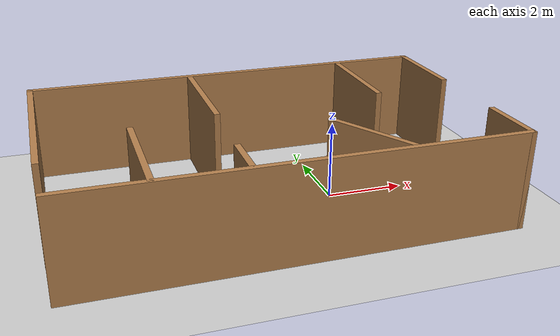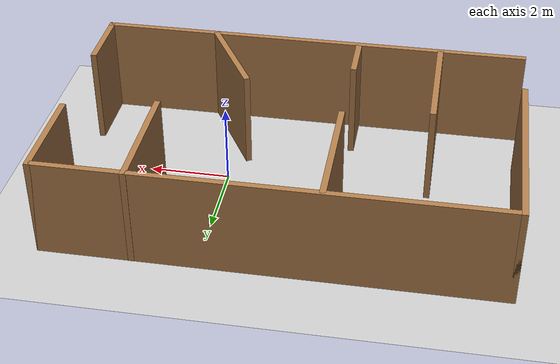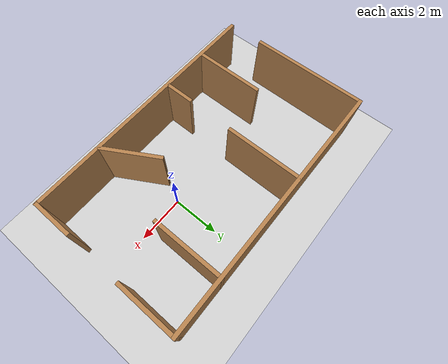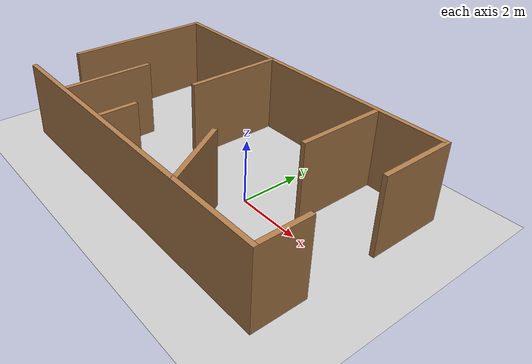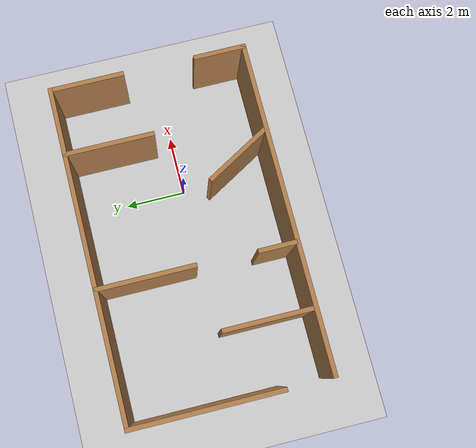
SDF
<?xml version='1.0'?>
<sdf version='1.7'>
  <world name='maze_world'>

    <!-- Sun -->
    <include>
      <uri>model://sun</uri>
    </include>

    <!-- Ground plane -->
    <include>
      <uri>model://ground_plane</uri>
    </include>

    <!-- Embedded maze model (all walls) -->
    <model name='maze_walls_model'>
      <pose>-1.72634 0.281381 0 0 0 0</pose>
      <static>1</static>

      <link name='Wall_0'>
        <pose>0.01344 -3.21138 0 0 0 0</pose>
        <collision name='Wall_0_Collision'>
          <pose>0 0 1.25 0 0 0</pose>
          <geometry><box><size>11 0.15 2.5</size></box></geometry>
        </collision>
        <visual name='Wall_0_Visual'>
          <pose>0 0 1.25 0 0 0</pose>
          <geometry><box><size>11 0.15 2.5</size></box></geometry>
          <material>
            <script>
              <uri>file://media/materials/scripts/gazebo.material</uri>
              <name>Gazebo/Wood</name>
            </script>
            <ambient>1 1 1 1</ambient>
          </material>
        </visual>
      </link>

      <link name='Wall_1'>
        <pose>5.43844 -2.41138 0 0 0 1.5708</pose>
        <collision name='Wall_1_Collision'>
          <pose>0 0 1.25 0 0 0</pose>
          <geometry><box><size>1.75 0.15 2.5</size></box></geometry>
        </collision>
        <visual name='Wall_1_Visual'>
          <pose>0 0 1.25 0 0 0</pose>
          <geometry><box><size>1.75 0.15 2.5</size></box></geometry>
          <material>
            <script>
              <uri>file://media/materials/scripts/gazebo.material</uri>
              <name>Gazebo/Wood</name>
            </script>
            <ambient>1 1 1 1</ambient>
          </material>
        </visual>
      </link>

      <link name='Wall_10'>
        <pose>-5.46182 0.781711 0 0 0 1.5708</pose>
        <collision name='Wall_10_Collision'>
          <pose>0 0 1.25 0 0 0</pose>
          <geometry><box><size>5 0.15 2.5</size></box></geometry>
        </collision>
        <visual name='Wall_10_Visual'>
          <pose>0 0 1.25 0 0 0</pose>
          <geometry><box><size>5 0.15 2.5</size></box></geometry>
          <material>
            <script>
              <uri>file://media/materials/scripts/gazebo.material</uri>
              <name>Gazebo/Wood</name>
            </script>
            <ambient>1 1 1 1</ambient>
          </material>
        </visual>
      </link>

      <link name='Wall_11'>
        <pose>0 3.20671 0 0 0 0</pose>
        <collision name='Wall_11_Collision'>
          <pose>0 0 1.25 0 0 0</pose>
          <geometry><box><size>11.0736 0.15 2.5</size></box></geometry>
        </collision>
        <visual name='Wall_11_Visual'>
          <pose>0 0 1.25 0 0 0</pose>
          <geometry><box><size>11.0736 0.15 2.5</size></box></geometry>
          <material>
            <script>
              <uri>file://media/materials/scripts/gazebo.material</uri>
              <name>Gazebo/Wood</name>
            </script>
            <ambient>1 1 1 1</ambient>
          </material>
        </visual>
      </link>

      <link name='Wall_12'>
        <pose>5.46182 2.03171 0 0 0 -1.5708</pose>
        <collision name='Wall_12_Collision'>
          <pose>0 0 1.25 0 0 0</pose>
          <geometry><box><size>2.5 0.15 2.5</size></box></geometry>
        </collision>
        <visual name='Wall_12_Visual'>
          <pose>0 0 1.25 0 0 0</pose>
          <geometry><box><size>2.5 0.15 2.5</size></box></geometry>
          <material>
            <script>
              <uri>file://media/materials/scripts/gazebo.material</uri>
              <name>Gazebo/Wood</name>
            </script>
            <ambient>1 1 1 1</ambient>
          </material>
        </visual>
      </link>

      <link name='Wall_14'>
        <pose>-1.17353 1.62092 0 0 0 -1.5708</pose>
        <collision name='Wall_14_Collision'>
          <pose>0 0 1.25 0 0 0</pose>
          <geometry><box><size>3.25 0.15 2.5</size></box></geometry>
        </collision>
        <visual name='Wall_14_Visual'>
          <pose>0 0 1.25 0 0 0</pose>
          <geometry><box><size>3.25 0.15 2.5</size></box></geometry>
          <material>
            <script>
              <uri>file://media/materials/scripts/gazebo.material</uri>
              <name>Gazebo/Wood</name>
            </script>
            <ambient>1 1 1 1</ambient>
          </material>
        </visual>
      </link>

      <link name='Wall_16'>
        <pose>3.25636 1.78638 0 0 0 -1.5708</pose>
        <collision name='Wall_16_Collision'>
          <pose>0 0 1.25 0 0 0</pose>
          <geometry><box><size>3 0.15 2.5</size></box></geometry>
        </collision>
        <visual name='Wall_16_Visual'>
          <pose>0 0 1.25 0 0 0</pose>
          <geometry><box><size>3 0.15 2.5</size></box></geometry>
          <material>
            <script>
              <uri>file://media/materials/scripts/gazebo.material</uri>
              <name>Gazebo/Wood</name>
            </script>
            <ambient>1 1 1 1</ambient>
          </material>
        </visual>
      </link>

      <link name='Wall_18'>
        <pose>1.96088 -2.14279 0 0 0 2.0944</pose>
        <collision name='Wall_18_Collision'>
          <pose>0 0 1.25 0 0 0</pose>
          <geometry><box><size>2.5 0.15 2.5</size></box></geometry>
        </collision>
        <visual name='Wall_18_Visual'>
          <pose>0 0 1.25 0 0 0</pose>
          <geometry><box><size>2.5 0.15 2.5</size></box></geometry>
          <material>
            <script>
              <uri>file://media/materials/scripts/gazebo.material</uri>
              <name>Gazebo/Wood</name>
            </script>
            <ambient>1 1 1 1</ambient>
          </material>
        </visual>
      </link>

      <link name='Wall_6'>
        <pose>-3.31768 -1.73011 0 0 0 -1.5708</pose>
        <collision name='Wall_6_Collision'>
          <pose>0 0 1.25 0 0 0</pose>
          <geometry><box><size>3 0.15 2.5</size></box></geometry>
        </collision>
        <visual name='Wall_6_Visual'>
          <pose>0 0 1.25 0 0 0</pose>
          <geometry><box><size>3 0.15 2.5</size></box></geometry>
          <material>
            <script>
              <uri>file://media/materials/scripts/gazebo.material</uri>
              <name>Gazebo/Wood</name>
            </script>
            <ambient>1 1 1 1</ambient>
          </material>
        </visual>
      </link>

      <link name='Wall_8'>
        <pose>-1.21399 -2.56308 0 0 0 -1.5708</pose>
        <collision name='Wall_8_Collision'>
          <pose>0 0 1.25 0 0 0</pose>
          <geometry><box><size>1.25 0.15 2.5</size></box></geometry>
        </collision>
        <visual name='Wall_8_Visual'>
          <pose>0 0 1.25 0 0 0</pose>
          <geometry><box><size>1.25 0.15 2.5</size></box></geometry>
          <material>
            <script>
              <uri>file://media/materials/scripts/gazebo.material</uri>
              <name>Gazebo/Wood</name>
            </script>
            <ambient>1 1 1 1</ambient>
          </material>
        </visual>
      </link>

    </model>

  </world>
</sdf>
